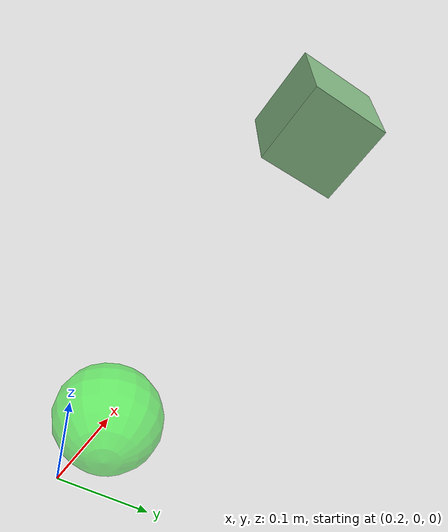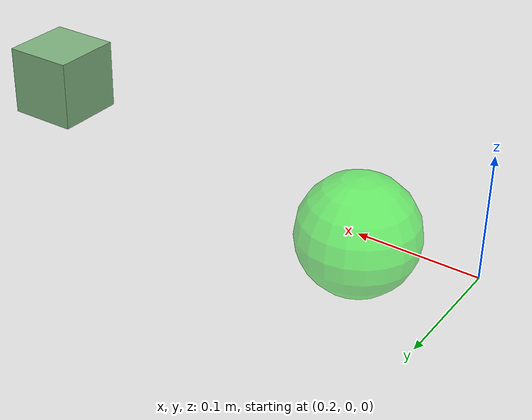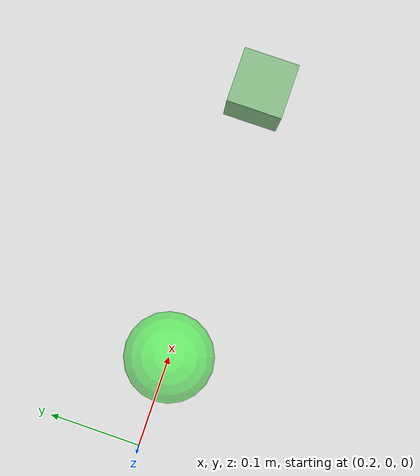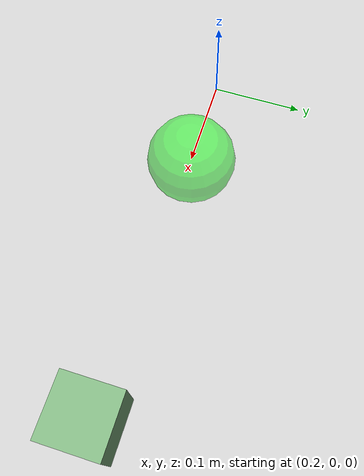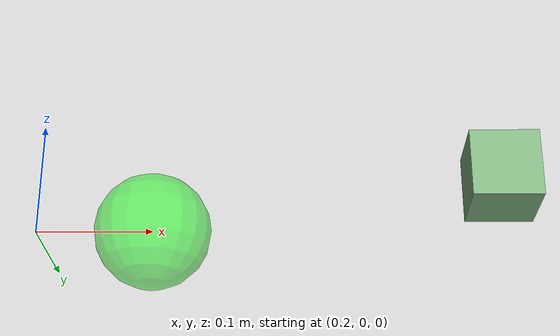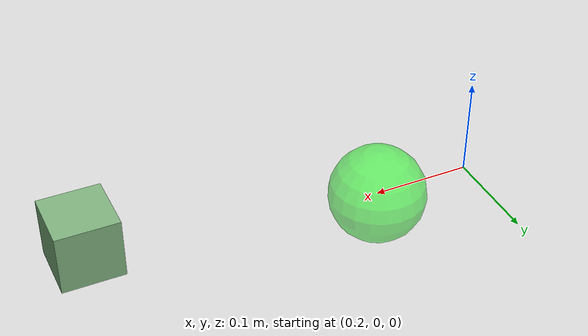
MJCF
<mujoco model="table">
  <asset>
    <material name="table_wood"
              rgba="0.6 0.45 0.3 1"
              specular="0.2"
              shininess="0.2"/>
  </asset>
  <worldbody>
    <body name="obj" pos="0.6 0.0 0.05" quat="1 0 0 0">
        <joint type="free" damping="0.01" name="obj_joint"/>
          <geom name="obj_geom" mass="0.1" type="box" size="0.03 0.03 0.03" rgba="0.5 0.7 0.5 1" friction="1" condim="6"/>
          <site name="obj_site" pos="0 0 0" size="0.01" type="sphere"/>
      </body>

    <body name="goal_site" pos="0.3 0.0 0.0" quat="1 0 0 0">
      <site name="goal_site" pos="0 0 0" size="0.05" type="sphere" rgba="0 1 0 0.5"/>
    </body>
  </worldbody>
</mujoco>
